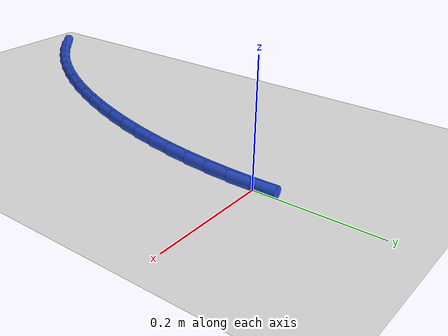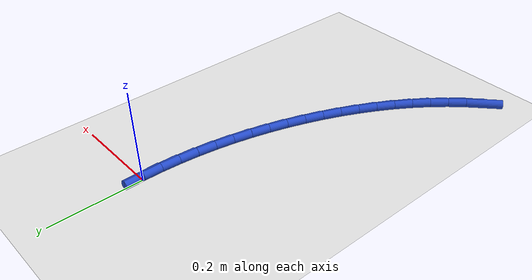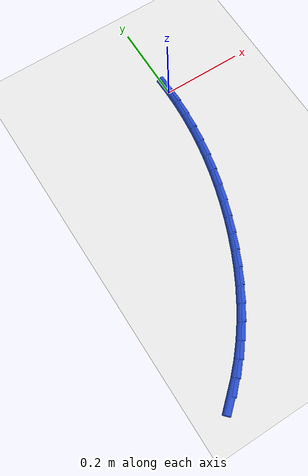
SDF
<sdf version="1.6">
 <world name="default">
  <model name="ground_plane">
   <static>1</static>
   <link name="link">
    <collision name="collision">
     <geometry><plane><normal>0 0 1</normal><size>100 100</size></plane></geometry>
     <surface><friction><ode><mu>100</mu><mu2>50</mu2></ode></friction></surface>
    </collision>
    <visual name="visual">
     <cast_shadows>0</cast_shadows>
     <geometry><plane><normal>0 0 1</normal><size>100 100</size></plane></geometry>
     <material>
      <script><uri>file://media/materials/scripts/gazebo.material</uri><name>Gazebo/WhiteGlow</name></script>
     </material>
    </visual>
   </link>
  </model>
  <model name="line">
   <link name="link_0">
    <pose>-1.5612511283791264e-17 -4.163336342344337e-17 0.01 0 1.57 -1.5517195649385054</pose>
    <collision name="collision">
     <geometry><cylinder><radius>0.01</radius><length>0.08</length></cylinder></geometry>
    </collision>
    <visual name="visual">
     <material>
      <script><name>Gazebo/Blue</name><uri>file://media/materials/scripts/gazebo.material</uri></script>
     </material>
     <geometry><cylinder><radius>0.01</radius><length>0.08</length></cylinder></geometry>
    </visual>
   </link>
   <link name="link_151">
    <pose>-0.29172396018541086 -0.7018722059741573 0.01 0 1.57 0.7409568600808863</pose>
    <collision name="collision">
     <geometry><cylinder><radius>0.01</radius><length>0.08</length></cylinder></geometry>
    </collision>
    <visual name="visual">
     <material>
      <script><name>Gazebo/Blue</name><uri>file://media/materials/scripts/gazebo.material</uri></script>
     </material>
     <geometry><cylinder><radius>0.01</radius><length>0.08</length></cylinder></geometry>
    </visual>
   </link>
   <link name="link_152">
    <pose>-0.26198629080260377 -0.6746668272018966 0.01 0 1.57 0.8038977202169142</pose>
    <collision name="collision">
     <geometry><cylinder><radius>0.01</radius><length>0.08</length></cylinder></geometry>
    </collision>
    <visual name="visual">
     <material>
      <script><name>Gazebo/Blue</name><uri>file://media/materials/scripts/gazebo.material</uri></script>
     </material>
     <geometry><cylinder><radius>0.01</radius><length>0.08</length></cylinder></geometry>
    </visual>
   </link>
   <link name="link_153">
    <pose>-0.23391651163135171 -0.645538793107977 0.01 0 1.57 0.8647896317328125</pose>
    <collision name="collision">
     <geometry><cylinder><radius>0.01</radius><length>0.08</length></cylinder></geometry>
    </collision>
    <visual name="visual">
     <material>
      <script><name>Gazebo/Blue</name><uri>file://media/materials/scripts/gazebo.material</uri></script>
     </material>
     <geometry><cylinder><radius>0.01</radius><length>0.08</length></cylinder></geometry>
    </visual>
   </link>
   <link name="link_154">
    <pose>-0.2075285905597992 -0.6145891722205992 0.01 0 1.57 0.9216897400848567</pose>
    <collision name="collision">
     <geometry><cylinder><radius>0.01</radius><length>0.08</length></cylinder></geometry>
    </collision>
    <visual name="visual">
     <material>
      <script><name>Gazebo/Blue</name><uri>file://media/materials/scripts/gazebo.material</uri></script>
     </material>
     <geometry><cylinder><radius>0.01</radius><length>0.08</length></cylinder></geometry>
    </visual>
   </link>
   <link name="link_155">
    <pose>-0.1827972131833558 -0.5819962362224956 0.01 0 1.57 0.9748107311259483</pose>
    <collision name="collision">
     <geometry><cylinder><radius>0.01</radius><length>0.08</length></cylinder></geometry>
    </collision>
    <visual name="visual">
     <material>
      <script><name>Gazebo/Blue</name><uri>file://media/materials/scripts/gazebo.material</uri></script>
     </material>
     <geometry><cylinder><radius>0.01</radius><length>0.08</length></cylinder></geometry>
    </visual>
   </link>
   <link name="link_156">
    <pose>-0.15969706364650163 -0.5479382596479735 0.01 0 1.57 1.0244195104598022</pose>
    <collision name="collision">
     <geometry><cylinder><radius>0.01</radius><length>0.08</length></cylinder></geometry>
    </collision>
    <visual name="visual">
     <material>
      <script><name>Gazebo/Blue</name><uri>file://media/materials/scripts/gazebo.material</uri></script>
     </material>
     <geometry><cylinder><radius>0.01</radius><length>0.08</length></cylinder></geometry>
    </visual>
   </link>
   <link name="link_157">
    <pose>-0.13820282609371679 -0.5125935170313403 0.01 0 1.57 1.0708143091091191</pose>
    <collision name="collision">
     <geometry><cylinder><radius>0.01</radius><length>0.08</length></cylinder></geometry>
    </collision>
    <visual name="visual">
     <material>
      <script><name>Gazebo/Blue</name><uri>file://media/materials/scripts/gazebo.material</uri></script>
     </material>
     <geometry><cylinder><radius>0.01</radius><length>0.08</length></cylinder></geometry>
    </visual>
   </link>
   <link name="link_158">
    <pose>-0.11828918466948084 -0.476140282906902 0.01 0 1.57 1.1143080790687372</pose>
    <collision name="collision">
     <geometry><cylinder><radius>0.01</radius><length>0.08</length></cylinder></geometry>
    </collision>
    <visual name="visual">
     <material>
      <script><name>Gazebo/Blue</name><uri>file://media/materials/scripts/gazebo.material</uri></script>
     </material>
     <geometry><cylinder><radius>0.01</radius><length>0.08</length></cylinder></geometry>
    </visual>
   </link>
   <link name="link_159">
    <pose>-0.09993082351827466 -0.43875683180896785 0.01 0 1.57 1.1552173468384601</pose>
    <collision name="collision">
     <geometry><cylinder><radius>0.01</radius><length>0.08</length></cylinder></geometry>
    </collision>
    <visual name="visual">
     <material>
      <script><name>Gazebo/Blue</name><uri>file://media/materials/scripts/gazebo.material</uri></script>
     </material>
     <geometry><cylinder><radius>0.01</radius><length>0.08</length></cylinder></geometry>
    </visual>
   </link>
   <link name="link_160">
    <pose>-0.08310242678457784 -0.4006214382718442 0.01 0 1.57 1.1938555353087463</pose>
    <collision name="collision">
     <geometry><cylinder><radius>0.01</radius><length>0.08</length></cylinder></geometry>
    </collision>
    <visual name="visual">
     <material>
      <script><name>Gazebo/Blue</name><uri>file://media/materials/scripts/gazebo.material</uri></script>
     </material>
     <geometry><cylinder><radius>0.01</radius><length>0.08</length></cylinder></geometry>
    </visual>
   </link>
   <link name="link_161">
    <pose>-0.06777867861287042 -0.36191237682983807 0.01 0 1.57 1.230906622281904</pose>
    <collision name="collision">
     <geometry><cylinder><radius>0.01</radius><length>0.08</length></cylinder></geometry>
    </collision>
    <visual name="visual">
     <material>
      <script><name>Gazebo/Blue</name><uri>file://media/materials/scripts/gazebo.material</uri></script>
     </material>
     <geometry><cylinder><radius>0.01</radius><length>0.08</length></cylinder></geometry>
    </visual>
   </link>
   <link name="link_162">
    <pose>-0.053942910277183655 -0.32278548753776737 0.01 0 1.57 1.2681542247756987</pose>
    <collision name="collision">
     <geometry><cylinder><radius>0.01</radius><length>0.08</length></cylinder></geometry>
    </collision>
    <visual name="visual">
     <material>
      <script><name>Gazebo/Blue</name><uri>file://media/materials/scripts/gazebo.material</uri></script>
     </material>
     <geometry><cylinder><radius>0.01</radius><length>0.08</length></cylinder></geometry>
    </visual>
   </link>
   <link name="link_163">
    <pose>-0.04161487616268959 -0.283302112786803 0.01 0 1.57 1.3060535093180632</pose>
    <collision name="collision">
     <geometry><cylinder><radius>0.01</radius><length>0.08</length></cylinder></geometry>
    </collision>
    <visual name="visual">
     <material>
      <script><name>Gazebo/Blue</name><uri>file://media/materials/scripts/gazebo.material</uri></script>
     </material>
     <geometry><cylinder><radius>0.01</radius><length>0.08</length></cylinder></geometry>
    </visual>
   </link>
   <link name="link_164">
    <pose>-0.030823919148418415 -0.24349871817316424 0.01 0 1.57 1.3446204081305912</pose>
    <collision name="collision">
     <geometry><cylinder><radius>0.01</radius><length>0.08</length></cylinder></geometry>
    </collision>
    <visual name="visual">
     <material>
      <script><name>Gazebo/Blue</name><uri>file://media/materials/scripts/gazebo.material</uri></script>
     </material>
     <geometry><cylinder><radius>0.01</radius><length>0.08</length></cylinder></geometry>
    </visual>
   </link>
   <link name="link_165">
    <pose>-0.02159938215995084 -0.20341176917229414 0.01 0 1.57 1.383864687800172</pose>
    <collision name="collision">
     <geometry><cylinder><radius>0.01</radius><length>0.08</length></cylinder></geometry>
    </collision>
    <visual name="visual">
     <material>
      <script><name>Gazebo/Blue</name><uri>file://media/materials/scripts/gazebo.material</uri></script>
     </material>
     <geometry><cylinder><radius>0.01</radius><length>0.08</length></cylinder></geometry>
    </visual>
   </link>
   <link name="link_166">
    <pose>-0.013970608122867795 -0.1630777312596363 0.01 0 1.57 1.423789128653216</pose>
    <collision name="collision">
     <geometry><cylinder><radius>0.01</radius><length>0.08</length></cylinder></geometry>
    </collision>
    <visual name="visual">
     <material>
      <script><name>Gazebo/Blue</name><uri>file://media/materials/scripts/gazebo.material</uri></script>
     </material>
     <geometry><cylinder><radius>0.01</radius><length>0.08</length></cylinder></geometry>
    </visual>
   </link>
   <link name="link_167">
    <pose>-0.007966939962750254 -0.12253306991063442 0.01 0 1.57 1.4643887188677502</pose>
    <collision name="collision">
     <geometry><cylinder><radius>0.01</radius><length>0.08</length></cylinder></geometry>
    </collision>
    <visual name="visual">
     <material>
      <script><name>Gazebo/Blue</name><uri>file://media/materials/scripts/gazebo.material</uri></script>
     </material>
     <geometry><cylinder><radius>0.01</radius><length>0.08</length></cylinder></geometry>
    </visual>
   </link>
   <link name="link_168">
    <pose>-0.0036177206051790723 -0.08181425060073133 0.01 0 1.57 1.5056498984095952</pose>
    <collision name="collision">
     <geometry><cylinder><radius>0.01</radius><length>0.08</length></cylinder></geometry>
    </collision>
    <visual name="visual">
     <material>
      <script><name>Gazebo/Blue</name><uri>file://media/materials/scripts/gazebo.material</uri></script>
     </material>
     <geometry><cylinder><radius>0.01</radius><length>0.08</length></cylinder></geometry>
    </visual>
   </link>
   <link name="link_169">
    <pose>-0.0009522929757353783 -0.04095773880537224 0.01 0 1.57 1.5475498913556804</pose>
    <collision name="collision">
     <geometry><cylinder><radius>0.01</radius><length>0.08</length></cylinder></geometry>
    </collision>
    <visual name="visual">
     <material>
      <script><name>Gazebo/Blue</name><uri>file://media/materials/scripts/gazebo.material</uri></script>
     </material>
     <geometry><cylinder><radius>0.01</radius><length>0.08</length></cylinder></geometry>
    </visual>
   </link>
   <link name="link_170">
    <pose>-1.5612511283791264e-17 -1.3877787807814457e-17 0.01 0 1.57 -1.551536484257412</pose>
    <collision name="collision">
     <geometry><cylinder><radius>0.01</radius><length>0.08</length></cylinder></geometry>
    </collision>
    <visual name="visual">
     <material>
      <script><name>Gazebo/Blue</name><uri>file://media/materials/scripts/gazebo.material</uri></script>
     </material>
     <geometry><cylinder><radius>0.01</radius><length>0.08</length></cylinder></geometry>
    </visual>
   </link>
  </model>
 </world>
</sdf>
